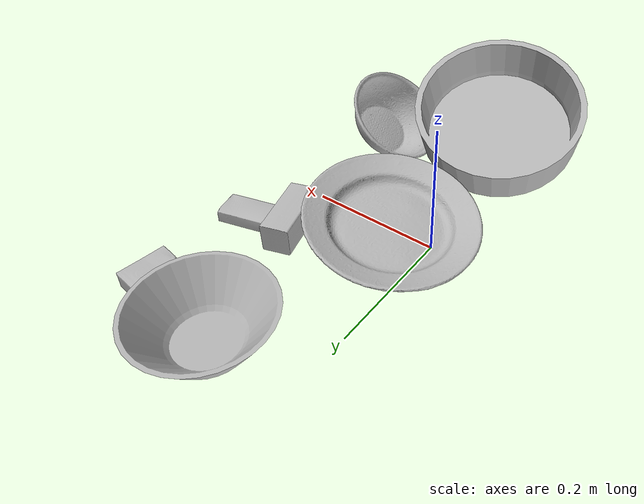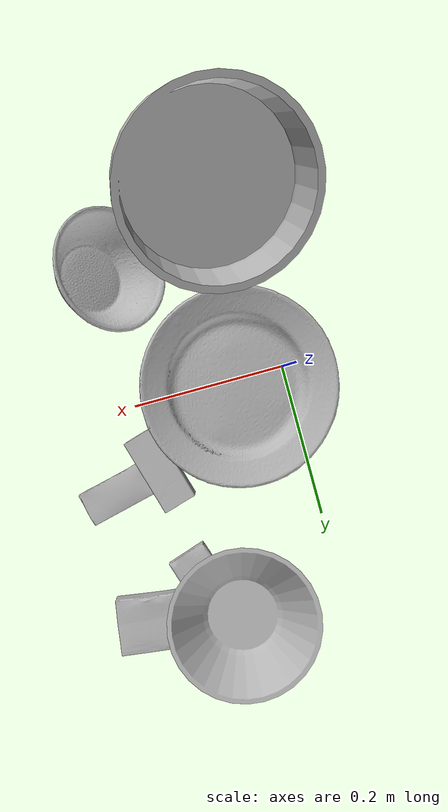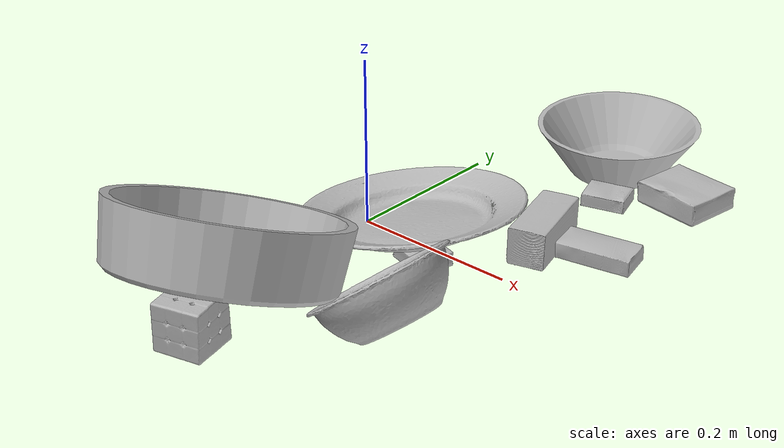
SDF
<sdf version="1.4">
  <world name="default">
    <light name="light1" type="point">
      <pose>0 0 1 0 0 0</pose>
      <diffuse>3 3 3 1</diffuse>
      <specular>3 3 3 1</specular>
    </light>
    <light name="light2" type="point">
      <pose>0 0.5 2 0 0 0</pose>
      <diffuse>1 1 1 1</diffuse>
      <specular>1 1 1 1</specular>
    </light>
    <light name="light3" type="point">
      <pose>0 0.5 2 0 0 0</pose>
      <diffuse>3 3 3 1</diffuse>
      <specular>3 3 3 1</specular>
    </light>
    <scene>
      <ambient>0.7 0.7 0.7</ambient>
    </scene>
    <model name="box1">
      <link name="link_box1">
        <collision name="default">
          <geometry>
            <mesh>
              <uri>model://cracker_box/collision_meshes/collision.obj</uri>
              <scale>0.25 0.25 0.25</scale>
            </mesh>
          </geometry>
          <surface>
            <friction>
              <ode>
                <mu>0.5</mu>
                <mu2>0.5</mu2>
              </ode>
            </friction>
          <contact>
        <ode>
            <max_vel>0</max_vel>
            <min_depth>0.0001</min_depth>
            <kp>1e8</kp>
        </ode>
    </contact></surface>
        </collision>
        <visual name="default">
          <geometry>
            <mesh>
              <uri>model://cracker_box/visual_meshes/visual.dae</uri>
              <scale>0.25 0.25 0.25</scale>
            </mesh>
          </geometry>
        </visual>
        <inertial>
          <mass>0.050503700971603394</mass>
          <pose>0.0002366037224419415 6.358561950037256e-05 -0.0004257383698131889 -0.00031620760376762643 -0.011106489600284392 0.0025467959332018085</pose>
          <inertia>
            <ixx>8.02868e-06</ixx>
            <iyy>1.3256925e-05</iyy>
            <izz>1.8918852e-05</izz>
            <ixy>0</ixy>
            <ixz>0</ixz>
            <iyz>0</iyz>
          </inertia>
        </inertial>
      </link>
      <pose>0.17912964522838593 0.2205226719379425 0.00912044569849968 -0.01178808591614528 -0.0073670739507053955 -2.830046049888974</pose>
    </model>
    <model name="box11">
      <link name="link_box11">
        <collision name="default">
          <geometry>
            <mesh>
              <uri>model://rubiks_cube/collision_meshes/collision.obj</uri>
              <scale>1.0 1.0 1.0</scale>
            </mesh>
          </geometry>
          <surface>
            <friction>
              <ode>
                <mu>0.5</mu>
                <mu2>0.5</mu2>
              </ode>
            </friction>
          <contact>
        <ode>
            <max_vel>0</max_vel>
            <min_depth>0.0001</min_depth>
            <kp>1e8</kp>
        </ode>
    </contact></surface>
        </collision>
        <visual name="default">
          <geometry>
            <mesh>
              <uri>model://rubiks_cube/visual_meshes/visual.dae</uri>
              <scale>1.0 1.0 1.0</scale>
            </mesh>
          </geometry>
        </visual>
        <inertial>
          <mass>0.15071694552898407</mass>
          <pose>2.6721043468569405e-05 5.2569666877388954e-05 -7.264316082000732e-06 -0.05467297119259296 -0.09814009057422186 -0.034453654418704155</pose>
          <inertia>
            <ixx>8.328124e-05</ixx>
            <iyy>8.2892846e-05</iyy>
            <izz>8.397135e-05</izz>
            <ixy>0</ixy>
            <ixz>0</ixz>
            <iyz>0</iyz>
          </inertia>
        </inertial>
      </link>
      <pose>0.04915832355618477 -0.30952244997024536 0.028678888455033302 -3.754201795683941e-05 0.00016663785418987906 -1.2977813337516575</pose>
    </model>
    <model name="box2">
      <link name="link_box2">
        <collision name="default">
          <geometry>
            <mesh>
              <uri>model://gelatin_box/collision_meshes/collision.obj</uri>
              <scale>1.0 1.0 1.0</scale>
            </mesh>
          </geometry>
          <surface>
            <friction>
              <ode>
                <mu>0.5</mu>
                <mu2>0.5</mu2>
              </ode>
            </friction>
          <contact>
        <ode>
            <max_vel>0</max_vel>
            <min_depth>0.0001</min_depth>
            <kp>1e8</kp>
        </ode>
    </contact></surface>
        </collision>
        <visual name="default">
          <geometry>
            <mesh>
              <uri>model://gelatin_box/visual_meshes/visual.dae</uri>
              <scale>1.0 1.0 1.0</scale>
            </mesh>
          </geometry>
        </visual>
        <inertial>
          <mass>0.24173277616500854</mass>
          <pose>0.00043196187471039593 0.00011156872642459348 -0.0003640321083366871 -0.001050371835386973 -0.004755817297158009 0.016440553881960234</pose>
          <inertia>
            <ixx>0.00017064363</ixx>
            <iyy>0.00012188985</iyy>
            <izz>0.00025975762</izz>
            <ixy>0</ixy>
            <ixz>0</ixz>
            <iyz>0</iyz>
          </inertia>
        </inertial>
      </link>
      <pose>0.25058290362358093 0.2760280966758728 0.01516831573098898 0.005597478781877448 -0.007304555233530735 -1.716788570950061</pose>
    </model>
    <model name="box21">
      <link name="link_box21">
        <collision name="default">
          <geometry>
            <mesh>
              <uri>model://wood_block/collision_meshes/collision.obj</uri>
              <scale>0.5 0.5 0.5</scale>
            </mesh>
          </geometry>
          <surface>
            <friction>
              <ode>
                <mu>0.5</mu>
                <mu2>0.5</mu2>
              </ode>
            </friction>
          <contact>
        <ode>
            <max_vel>0</max_vel>
            <min_depth>0.0001</min_depth>
            <kp>1e8</kp>
        </ode>
    </contact></surface>
        </collision>
        <visual name="default">
          <geometry>
            <mesh>
              <uri>model://wood_block/visual_meshes/visual.dae</uri>
              <scale>0.5 0.5 0.5</scale>
            </mesh>
          </geometry>
        </visual>
        <inertial>
          <mass>0.16252566874027252</mass>
          <pose>-2.906657982748584e-06 -0.000285404734313488 0.00013204291462898254 -0.05220975528683206 -0.005192696037335319 -0.006861378846526553</pose>
          <inertia>
            <ixx>5.437098e-05</ixx>
            <iyy>0.00017175796</iyy>
            <izz>0.00017111548</izz>
            <ixy>0</ixy>
            <ixz>0</ixz>
            <iyz>0</iyz>
          </inertia>
        </inertial>
      </link>
      <pose>0.18808624148368835 0.08570366352796555 0.022527476772665977 -0.0158498375394047 -0.0004015135880331919 -1.2883839808722537</pose>
    </model>
    <model name="box3">
      <link name="link_box3">
        <collision name="default">
          <geometry>
            <mesh>
              <uri>model://pudding_box/collision_meshes/collision.obj</uri>
              <scale>0.5 0.5 0.5</scale>
            </mesh>
          </geometry>
          <surface>
            <friction>
              <ode>
                <mu>0.5</mu>
                <mu2>0.5</mu2>
              </ode>
            </friction>
          <contact>
        <ode>
            <max_vel>0</max_vel>
            <min_depth>0.0001</min_depth>
            <kp>1e8</kp>
        </ode>
    </contact></surface>
        </collision>
        <visual name="default">
          <geometry>
            <mesh>
              <uri>model://pudding_box/visual_meshes/visual.dae</uri>
              <scale>0.5 0.5 0.5</scale>
            </mesh>
          </geometry>
        </visual>
        <inertial>
          <mass>0.05576644837856293</mass>
          <pose>0.00024474109522998333 0.0004033942532259971 -0.0002594413817860186 0.005213101792545572 -0.006603798718575614 0.020079825159656634</pose>
          <inertia>
            <ixx>1.5760277e-05</ixx>
            <iyy>1.0603625e-05</iyy>
            <izz>2.3274164e-05</izz>
            <ixy>0</ixy>
            <ixz>0</ixz>
            <iyz>0</iyz>
          </inertia>
        </inertial>
      </link>
      <pose>0.11071927100419998 -0.028857672587037086 0.010320823639631271 -0.017615237314162008 0.00899319191842608 1.300757803458756</pose>
    </model>
    <model name="box31">
      <link name="link_box31">
        <collision name="default">
          <geometry>
            <mesh>
              <uri>model://sugar_box/collision_meshes/collision.obj</uri>
              <scale>0.5 0.5 0.5</scale>
            </mesh>
          </geometry>
          <surface>
            <friction>
              <ode>
                <mu>0.5</mu>
                <mu2>0.5</mu2>
              </ode>
            </friction>
          <contact>
        <ode>
            <max_vel>0</max_vel>
            <min_depth>0.0001</min_depth>
            <kp>1e8</kp>
        </ode>
    </contact></surface>
        </collision>
        <visual name="default">
          <geometry>
            <mesh>
              <uri>model://sugar_box/visual_meshes/visual.dae</uri>
              <scale>0.5 0.5 0.5</scale>
            </mesh>
          </geometry>
        </visual>
        <inertial>
          <mass>0.1100529357790947</mass>
          <pose>0.0005171863595023751 1.924554817378521e-05 -0.00018182402709499002 -0.00040462641680988955 0.001050663522315131 0.0026153787888612426</pose>
          <inertia>
            <ixx>2.2923945e-05</ixx>
            <iyy>7.409492e-05</iyy>
            <izz>8.870046e-05</izz>
            <ixy>0</ixy>
            <ixz>0</ixz>
            <iyz>0</iyz>
          </inertia>
        </inertial>
      </link>
      <pose>0.252287894487381 0.1039469987154007 0.011399305425584316 0.0007743571814513491 -0.023432979956025796 -2.910246016101886</pose>
    </model>
    <model name="plate1">
      <link name="link_plate1">
        <collision name="default">
          <geometry>
            <mesh>
              <uri>model://pan_tefal/collision_meshes/collision.obj</uri>
              <scale>1.0 1.0 1.0</scale>
            </mesh>
          </geometry>
          <surface>
            <friction>
              <ode>
                <mu>0.5</mu>
                <mu2>0.5</mu2>
              </ode>
            </friction>
          <contact>
        <ode>
            <max_vel>0</max_vel>
            <min_depth>0.0001</min_depth>
            <kp>1e8</kp>
        </ode>
    </contact></surface>
        </collision>
        <visual name="default">
          <geometry>
            <mesh>
              <uri>model://pan_tefal/visual_meshes/visual.dae</uri>
              <scale>1.0 1.0 1.0</scale>
            </mesh>
          </geometry>
        </visual>
        <inertial>
          <mass>1.207520604133606</mass>
          <pose>-0.00018002177239395678 3.2792409911053255e-05 -0.00851493701338768 0.0008190288495961148 -0.0003301407263612178 -0.3318541272495768</pose>
          <inertia>
            <ixx>0.008335457</ixx>
            <iyy>0.008389196</iyy>
            <izz>0.015343971</izz>
            <ixy>0</ixy>
            <ixz>0</ixz>
            <iyz>0</iyz>
          </inertia>
        </inertial>
      </link>
      <pose>0.02812516689300537 -0.24115562438964844 0.08052732050418854 -0.326905193717153 0.23256080745897312 0.9105961228587938</pose>
    </model>
    <model name="bowl1">
      <link name="link_bowl1">
        <collision name="default">
          <geometry>
            <mesh>
              <uri>model://bowl/collision_meshes/collision.obj</uri>
              <scale>1.0 1.0 1.0</scale>
            </mesh>
          </geometry>
          <surface>
            <friction>
              <ode>
                <mu>0.5</mu>
                <mu2>0.5</mu2>
              </ode>
            </friction>
          <contact>
        <ode>
            <max_vel>0</max_vel>
            <min_depth>0.0001</min_depth>
            <kp>1e8</kp>
        </ode>
    </contact></surface>
        </collision>
        <visual name="default">
          <geometry>
            <mesh>
              <uri>model://bowl/visual_meshes/visual.dae</uri>
              <scale>1.0 1.0 1.0</scale>
            </mesh>
          </geometry>
        </visual>
        <inertial>
          <mass>0.09256309270858765</mass>
          <pose>0.00020445158588699996 -0.001030202372930944 -0.0008042642730288208 -0.015764073075752352 0.01454679669645375 0.7140412125775129</pose>
          <inertia>
            <ixx>0.00021262471</ixx>
            <iyy>0.00020787389</iyy>
            <izz>0.00035770793</izz>
            <ixy>0</ixy>
            <ixz>0</ixz>
            <iyz>0</iyz>
          </inertia>
        </inertial>
      </link>
      <pose>0.19354063272476196 -0.17268292605876923 0.04933101311326027 -0.4309636680679288 0.5118781259339312 2.3903334816050084</pose>
    </model>
    <model name="plate2">
      <link name="link_plate2">
        <collision name="default">
          <geometry>
            <mesh>
              <uri>model://plate/collision_meshes/collision.obj</uri>
              <scale>1.0 1.0 1.0</scale>
            </mesh>
          </geometry>
          <surface>
            <friction>
              <ode>
                <mu>0.5</mu>
                <mu2>0.5</mu2>
              </ode>
            </friction>
          <contact>
        <ode>
            <max_vel>0</max_vel>
            <min_depth>0.0001</min_depth>
            <kp>1e8</kp>
        </ode>
    </contact></surface>
        </collision>
        <visual name="default">
          <geometry>
            <mesh>
              <uri>model://plate/visual_meshes/visual.dae</uri>
              <scale>1.0 1.0 1.0</scale>
            </mesh>
          </geometry>
        </visual>
        <inertial>
          <mass>0.22150008380413055</mass>
          <pose>-0.0006044640904292464 0.0002782581141218543 -0.0010561984963715076 0.0022187839711676756 -0.00322547471274247 0.4526095389577293</pose>
          <inertia>
            <ixx>0.0010361817</ixx>
            <iyy>0.0010262709</iyy>
            <izz>0.0020266173</izz>
            <ixy>0</ixy>
            <ixz>0</ixz>
            <iyz>0</iyz>
          </inertia>
        </inertial>
      </link>
      <pose>0.06139324977993965 0.010598717257380486 0.02658666856586933 0.141793576125745 -0.07585469588101476 -1.3014637220179648</pose>
    </model>
    <model name="bowl2">
      <link name="link_bowl2">
        <collision name="default">
          <geometry>
            <mesh>
              <uri>model://bowl_a/collision_meshes/collision.obj</uri>
              <scale>1.0 1.0 1.0</scale>
            </mesh>
          </geometry>
          <surface>
            <friction>
              <ode>
                <mu>0.5</mu>
                <mu2>0.5</mu2>
              </ode>
            </friction>
          <contact>
        <ode>
            <max_vel>0</max_vel>
            <min_depth>0.0001</min_depth>
            <kp>1e8</kp>
        </ode>
    </contact></surface>
        </collision>
        <visual name="default">
          <geometry>
            <mesh>
              <uri>model://bowl_a/visual_meshes/visual.dae</uri>
              <scale>1.0 1.0 1.0</scale>
            </mesh>
          </geometry>
        </visual>
        <inertial>
          <mass>0.4869906008243561</mass>
          <pose>0.0002786735713016242 4.731232547783293e-05 -0.001376529224216938 -0.0009805388639875933 -0.0010938169956893674 -0.19123322132810686</pose>
          <inertia>
            <ixx>0.0013864844</ixx>
            <iyy>0.0013949967</iyy>
            <izz>0.0024659163</izz>
            <ixy>0</ixy>
            <ixz>0</ixz>
            <iyz>0</iyz>
          </inertia>
        </inertial>
      </link>
      <pose>0.13521364331245422 0.30116957426071167 0.03038298711180687 -4.405644728026904e-08 -3.0821890643094638e-09 -1.1660508328012638</pose>
    </model>
  <physics type="ode">
      <max_contacts>50</max_contacts>
      <ode>
        <solver>
          <type>quick</type>
          <iters>75</iters>
        </solver>
        <constraints>
          <contact_max_correcting_vel>0</contact_max_correcting_vel>
          <contact_surface_layer>0</contact_surface_layer>
        </constraints>
      </ode>
    </physics></world>
</sdf>
